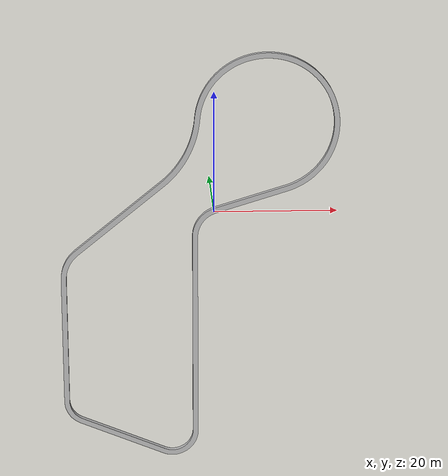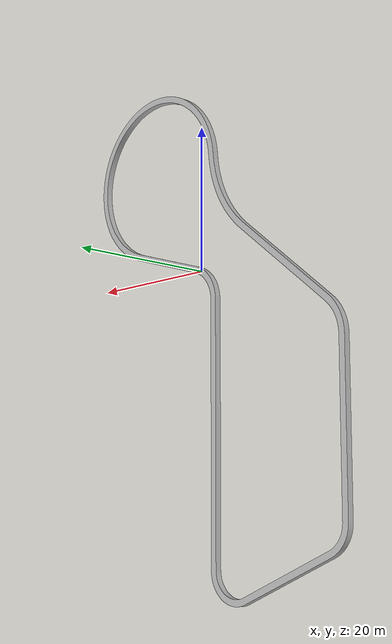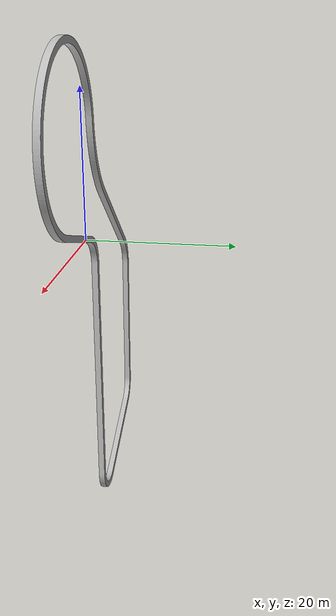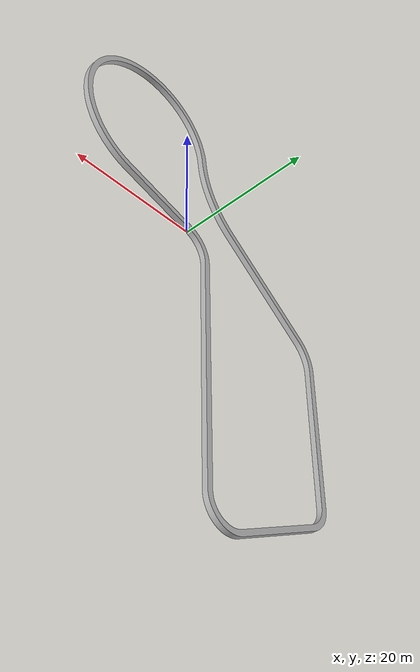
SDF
<?xml version='1.0'?>
<sdf version='1.6'>
  <model name="wallr2">
    <static>true</static>
    <pose>0 0 0 0 0 0</pose>

    <link name="wallr2">
      <pose>0 0 0 0 0 0</pose>
      <visual name="wallr">
        <geometry>
          <mesh>
            <uri>model://wallr2/meshes/RT2_Wall1.dae</uri>
            <scale>1.7 1.7 1.7</scale>
          </mesh>
        </geometry>
      </visual>
      <collision name="wallr">
        <geometry>
          <mesh>
            <uri>model://wallr2/meshes/RT2_Wall1.dae</uri>
            <scale>1.7 1.7 1.7</scale>
          </mesh>
        </geometry>
      </collision>
    </link>

  </model>
</sdf>
